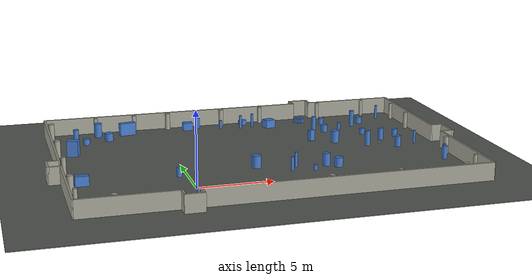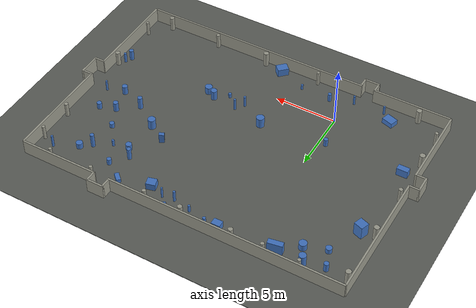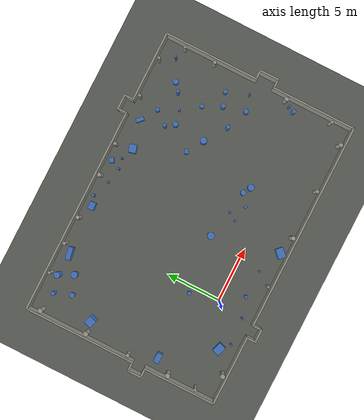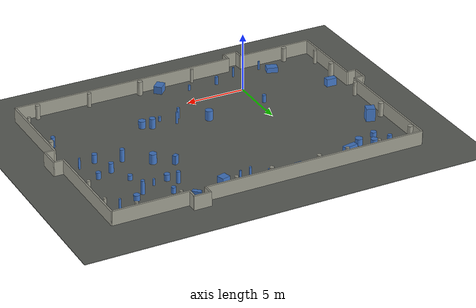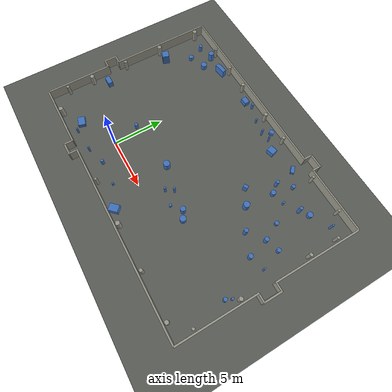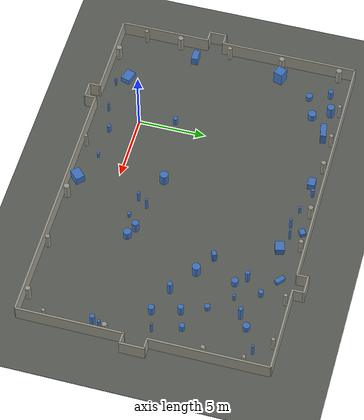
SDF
<sdf version="1.9">
 <world name="default">
  <model name="track_feature">
   <static>true</static>
   <link name="feature_link">
    <collision name="feat_box_5_collision">
     <pose>-2.174799 13.437083 0.448464 0.000000 0.000000 0.172310</pose>
     <geometry><box><size>1.150190 0.421792 0.896928</size></box></geometry>
    </collision>
    <visual name="feat_box_5_visual">
     <pose>-2.174799 13.437083 0.448464 0.000000 0.000000 0.172310</pose>
     <geometry><box><size>1.150190 0.421792 0.896928</size></box></geometry>
     <material><ambient>0.25 0.45 0.75 1</ambient><diffuse>0.25 0.45 0.75 1</diffuse></material>
    </visual>
    <collision name="feat_box_6_collision">
     <pose>-6.569533 9.118190 0.548116 0.000000 0.000000 -0.333008</pose>
     <geometry><box><size>0.749614 0.699634 1.096233</size></box></geometry>
    </collision>
    <visual name="feat_box_6_visual">
     <pose>-6.569533 9.118190 0.548116 0.000000 0.000000 -0.333008</pose>
     <geometry><box><size>0.749614 0.699634 1.096233</size></box></geometry>
     <material><ambient>0.25 0.45 0.75 1</ambient><diffuse>0.25 0.45 0.75 1</diffuse></material>
    </visual>
    <collision name="feat_box_7_collision">
     <pose>10.310160 8.431159 0.380792 0.000000 0.000000 2.068388</pose>
     <geometry><box><size>0.315067 0.410631 0.761584</size></box></geometry>
    </collision>
    <visual name="feat_box_7_visual">
     <pose>10.310160 8.431159 0.380792 0.000000 0.000000 2.068388</pose>
     <geometry><box><size>0.315067 0.410631 0.761584</size></box></geometry>
     <material><ambient>0.25 0.45 0.75 1</ambient><diffuse>0.25 0.45 0.75 1</diffuse></material>
    </visual>
    <collision name="feat_box_9_collision">
     <pose>10.962512 13.339833 0.157273 0.000000 0.000000 0.816995</pose>
     <geometry><box><size>0.345128 0.717801 0.314546</size></box></geometry>
    </collision>
    <visual name="feat_box_9_visual">
     <pose>10.962512 13.339833 0.157273 0.000000 0.000000 0.816995</pose>
     <geometry><box><size>0.345128 0.717801 0.314546</size></box></geometry>
     <material><ambient>0.25 0.45 0.75 1</ambient><diffuse>0.25 0.45 0.75 1</diffuse></material>
    </visual>
    <collision name="feat_box_10_collision">
     <pose>8.403281 12.710792 0.289428 0.000000 0.000000 -1.310550</pose>
     <geometry><box><size>0.654921 0.731768 0.578856</size></box></geometry>
    </collision>
    <visual name="feat_box_10_visual">
     <pose>8.403281 12.710792 0.289428 0.000000 0.000000 -1.310550</pose>
     <geometry><box><size>0.654921 0.731768 0.578856</size></box></geometry>
     <material><ambient>0.25 0.45 0.75 1</ambient><diffuse>0.25 0.45 0.75 1</diffuse></material>
    </visual>
    <collision name="feat_box_20_collision">
     <pose>-3.734603 -1.923020 0.218863 0.000000 0.000000 2.840322</pose>
     <geometry><box><size>0.931133 0.693589 0.437726</size></box></geometry>
    </collision>
    <visual name="feat_box_20_visual">
     <pose>-3.734603 -1.923020 0.218863 0.000000 0.000000 2.840322</pose>
     <geometry><box><size>0.931133 0.693589 0.437726</size></box></geometry>
     <material><ambient>0.25 0.45 0.75 1</ambient><diffuse>0.25 0.45 0.75 1</diffuse></material>
    </visual>
    <collision name="feat_box_21_collision">
     <pose>2.355821 13.623546 0.272021 0.000000 0.000000 1.598540</pose>
     <geometry><box><size>0.541540 0.700797 0.544043</size></box></geometry>
    </collision>
    <visual name="feat_box_21_visual">
     <pose>2.355821 13.623546 0.272021 0.000000 0.000000 1.598540</pose>
     <geometry><box><size>0.541540 0.700797 0.544043</size></box></geometry>
     <material><ambient>0.25 0.45 0.75 1</ambient><diffuse>0.25 0.45 0.75 1</diffuse></material>
    </visual>
    <collision name="feat_box_26_collision">
     <pose>6.139113 -2.872765 0.319586 0.000000 0.000000 0.792740</pose>
     <geometry><box><size>0.904940 0.691659 0.639172</size></box></geometry>
    </collision>
    <visual name="feat_box_26_visual">
     <pose>6.139113 -2.872765 0.319586 0.000000 0.000000 0.792740</pose>
     <geometry><box><size>0.904940 0.691659 0.639172</size></box></geometry>
     <material><ambient>0.25 0.45 0.75 1</ambient><diffuse>0.25 0.45 0.75 1</diffuse></material>
    </visual>
    <collision name="feat_box_31_collision">
     <pose>-6.799827 2.495728 0.328114 0.000000 0.000000 1.572940</pose>
     <geometry><box><size>0.486991 0.883632 0.656227</size></box></geometry>
    </collision>
    <visual name="feat_box_31_visual">
     <pose>-6.799827 2.495728 0.328114 0.000000 0.000000 1.572940</pose>
     <geometry><box><size>0.486991 0.883632 0.656227</size></box></geometry>
     <material><ambient>0.25 0.45 0.75 1</ambient><diffuse>0.25 0.45 0.75 1</diffuse></material>
    </visual>
    <collision name="feat_box_44_collision">
     <pose>6.667799 13.940735 0.173201 0.000000 0.000000 -2.572693</pose>
     <geometry><box><size>0.458432 0.416363 0.346402</size></box></geometry>
    </collision>
    <visual name="feat_box_44_visual">
     <pose>6.667799 13.940735 0.173201 0.000000 0.000000 -2.572693</pose>
     <geometry><box><size>0.458432 0.416363 0.346402</size></box></geometry>
     <material><ambient>0.25 0.45 0.75 1</ambient><diffuse>0.25 0.45 0.75 1</diffuse></material>
    </visual>
    <collision name="feat_cyl_1_collision">
     <pose>1.403269 -1.914486 0.340358 0.000000 0.000000 0.000000</pose>
     <geometry><cylinder><radius>0.145363</radius><length>0.680715</length></cylinder></geometry>
    </collision>
    <visual name="feat_cyl_1_visual">
     <pose>1.403269 -1.914486 0.340358 0.000000 0.000000 0.000000</pose>
     <geometry><cylinder><radius>0.145363</radius><length>0.680715</length></cylinder></geometry>
     <material><ambient>0.25 0.45 0.75 1</ambient><diffuse>0.25 0.45 0.75 1</diffuse></material>
    </visual>
    <collision name="feat_cyl_2_collision">
     <pose>16.485374 7.789993 0.274178 0.000000 0.000000 0.000000</pose>
     <geometry><cylinder><radius>0.194425</radius><length>0.548357</length></cylinder></geometry>
    </collision>
    <visual name="feat_cyl_2_visual">
     <pose>16.485374 7.789993 0.274178 0.000000 0.000000 0.000000</pose>
     <geometry><cylinder><radius>0.194425</radius><length>0.548357</length></cylinder></geometry>
     <material><ambient>0.25 0.45 0.75 1</ambient><diffuse>0.25 0.45 0.75 1</diffuse></material>
    </visual>
    <collision name="feat_cyl_3_collision">
     <pose>-4.304456 13.519091 0.484793 0.000000 0.000000 0.000000</pose>
     <geometry><cylinder><radius>0.276709</radius><length>0.969587</length></cylinder></geometry>
    </collision>
    <visual name="feat_cyl_3_visual">
     <pose>-4.304456 13.519091 0.484793 0.000000 0.000000 0.000000</pose>
     <geometry><cylinder><radius>0.276709</radius><length>0.969587</length></cylinder></geometry>
     <material><ambient>0.25 0.45 0.75 1</ambient><diffuse>0.25 0.45 0.75 1</diffuse></material>
    </visual>
    <collision name="feat_cyl_4_collision">
     <pose>17.807359 2.253464 0.427318 0.000000 0.000000 0.000000</pose>
     <geometry><cylinder><radius>0.111590</radius><length>0.854636</length></cylinder></geometry>
    </collision>
    <visual name="feat_cyl_4_visual">
     <pose>17.807359 2.253464 0.427318 0.000000 0.000000 0.000000</pose>
     <geometry><cylinder><radius>0.111590</radius><length>0.854636</length></cylinder></geometry>
     <material><ambient>0.25 0.45 0.75 1</ambient><diffuse>0.25 0.45 0.75 1</diffuse></material>
    </visual>
    <collision name="feat_cyl_8_collision">
     <pose>6.834041 1.928274 0.459564 0.000000 0.000000 0.000000</pose>
     <geometry><cylinder><radius>0.106569</radius><length>0.919128</length></cylinder></geometry>
    </collision>
    <visual name="feat_cyl_8_visual">
     <pose>6.834041 1.928274 0.459564 0.000000 0.000000 0.000000</pose>
     <geometry><cylinder><radius>0.106569</radius><length>0.919128</length></cylinder></geometry>
     <material><ambient>0.25 0.45 0.75 1</ambient><diffuse>0.25 0.45 0.75 1</diffuse></material>
    </visual>
    <collision name="feat_cyl_11_collision">
     <pose>-2.924593 -2.657007 0.374404 0.000000 0.000000 0.000000</pose>
     <geometry><cylinder><radius>0.085984</radius><length>0.748809</length></cylinder></geometry>
    </collision>
    <visual name="feat_cyl_11_visual">
     <pose>-2.924593 -2.657007 0.374404 0.000000 0.000000 0.000000</pose>
     <geometry><cylinder><radius>0.085984</radius><length>0.748809</length></cylinder></geometry>
     <material><ambient>0.25 0.45 0.75 1</ambient><diffuse>0.25 0.45 0.75 1</diffuse></material>
    </visual>
    <collision name="feat_cyl_12_collision">
     <pose>17.567096 1.713621 0.446315 0.000000 0.000000 0.000000</pose>
     <geometry><cylinder><radius>0.180054</radius><length>0.892630</length></cylinder></geometry>
    </collision>
    <visual name="feat_cyl_12_visual">
     <pose>17.567096 1.713621 0.446315 0.000000 0.000000 0.000000</pose>
     <geometry><cylinder><radius>0.180054</radius><length>0.892630</length></cylinder></geometry>
     <material><ambient>0.25 0.45 0.75 1</ambient><diffuse>0.25 0.45 0.75 1</diffuse></material>
    </visual>
    <collision name="feat_cyl_13_collision">
     <pose>-0.559488 2.623379 0.318713 0.000000 0.000000 0.000000</pose>
     <geometry><cylinder><radius>0.167321</radius><length>0.637426</length></cylinder></geometry>
    </collision>
    <visual name="feat_cyl_13_visual">
     <pose>-0.559488 2.623379 0.318713 0.000000 0.000000 0.000000</pose>
     <geometry><cylinder><radius>0.167321</radius><length>0.637426</length></cylinder></geometry>
     <material><ambient>0.25 0.45 0.75 1</ambient><diffuse>0.25 0.45 0.75 1</diffuse></material>
    </visual>
    <collision name="feat_cyl_14_collision">
     <pose>17.098362 12.929448 0.516872 0.000000 0.000000 0.000000</pose>
     <geometry><cylinder><radius>0.094552</radius><length>1.033744</length></cylinder></geometry>
    </collision>
    <visual name="feat_cyl_14_visual">
     <pose>17.098362 12.929448 0.516872 0.000000 0.000000 0.000000</pose>
     <geometry><cylinder><radius>0.094552</radius><length>1.033744</length></cylinder></geometry>
     <material><ambient>0.25 0.45 0.75 1</ambient><diffuse>0.25 0.45 0.75 1</diffuse></material>
    </visual>
    <collision name="feat_cyl_15_collision">
     <pose>3.233696 13.898324 0.391016 0.000000 0.000000 0.000000</pose>
     <geometry><cylinder><radius>0.125286</radius><length>0.782031</length></cylinder></geometry>
    </collision>
    <visual name="feat_cyl_15_visual">
     <pose>3.233696 13.898324 0.391016 0.000000 0.000000 0.000000</pose>
     <geometry><cylinder><radius>0.125286</radius><length>0.782031</length></cylinder></geometry>
     <material><ambient>0.25 0.45 0.75 1</ambient><diffuse>0.25 0.45 0.75 1</diffuse></material>
    </visual>
    <collision name="feat_cyl_16_collision">
     <pose>11.420468 11.130407 0.487877 0.000000 0.000000 0.000000</pose>
     <geometry><cylinder><radius>0.164424</radius><length>0.975754</length></cylinder></geometry>
    </collision>
    <visual name="feat_cyl_16_visual">
     <pose>11.420468 11.130407 0.487877 0.000000 0.000000 0.000000</pose>
     <geometry><cylinder><radius>0.164424</radius><length>0.975754</length></cylinder></geometry>
     <material><ambient>0.25 0.45 0.75 1</ambient><diffuse>0.25 0.45 0.75 1</diffuse></material>
    </visual>
    <collision name="feat_cyl_17_collision">
     <pose>7.217926 13.164339 0.489561 0.000000 0.000000 0.000000</pose>
     <geometry><cylinder><radius>0.082447</radius><length>0.979122</length></cylinder></geometry>
    </collision>
    <visual name="feat_cyl_17_visual">
     <pose>7.217926 13.164339 0.489561 0.000000 0.000000 0.000000</pose>
     <geometry><cylinder><radius>0.082447</radius><length>0.979122</length></cylinder></geometry>
     <material><ambient>0.25 0.45 0.75 1</ambient><diffuse>0.25 0.45 0.75 1</diffuse></material>
    </visual>
    <collision name="feat_cyl_18_collision">
     <pose>12.405849 12.337244 0.253028 0.000000 0.000000 0.000000</pose>
     <geometry><cylinder><radius>0.179297</radius><length>0.506056</length></cylinder></geometry>
    </collision>
    <visual name="feat_cyl_18_visual">
     <pose>12.405849 12.337244 0.253028 0.000000 0.000000 0.000000</pose>
     <geometry><cylinder><radius>0.179297</radius><length>0.506056</length></cylinder></geometry>
     <material><ambient>0.25 0.45 0.75 1</ambient><diffuse>0.25 0.45 0.75 1</diffuse></material>
    </visual>
    <collision name="feat_cyl_19_collision">
     <pose>15.306951 12.035152 0.235700 0.000000 0.000000 0.000000</pose>
     <geometry><cylinder><radius>0.257866</radius><length>0.471400</length></cylinder></geometry>
    </collision>
    <visual name="feat_cyl_19_visual">
     <pose>15.306951 12.035152 0.235700 0.000000 0.000000 0.000000</pose>
     <geometry><cylinder><radius>0.257866</radius><length>0.471400</length></cylinder></geometry>
     <material><ambient>0.25 0.45 0.75 1</ambient><diffuse>0.25 0.45 0.75 1</diffuse></material>
    </visual>
    <collision name="feat_cyl_22_collision">
     <pose>15.224515 7.358458 0.406526 0.000000 0.000000 0.000000</pose>
     <geometry><cylinder><radius>0.204325</radius><length>0.813052</length></cylinder></geometry>
    </collision>
    <visual name="feat_cyl_22_visual">
     <pose>15.224515 7.358458 0.406526 0.000000 0.000000 0.000000</pose>
     <geometry><cylinder><radius>0.204325</radius><length>0.813052</length></cylinder></geometry>
     <material><ambient>0.25 0.45 0.75 1</ambient><diffuse>0.25 0.45 0.75 1</diffuse></material>
    </visual>
    <collision name="feat_cyl_23_collision">
     <pose>4.831986 13.328597 0.294774 0.000000 0.000000 0.000000</pose>
     <geometry><cylinder><radius>0.096906</radius><length>0.589548</length></cylinder></geometry>
    </collision>
    <visual name="feat_cyl_23_visual">
     <pose>4.831986 13.328597 0.294774 0.000000 0.000000 0.000000</pose>
     <geometry><cylinder><radius>0.096906</radius><length>0.589548</length></cylinder></geometry>
     <material><ambient>0.25 0.45 0.75 1</ambient><diffuse>0.25 0.45 0.75 1</diffuse></material>
    </visual>
    <collision name="feat_cyl_24_collision">
     <pose>6.275229 13.003795 0.473795 0.000000 0.000000 0.000000</pose>
     <geometry><cylinder><radius>0.104284</radius><length>0.947589</length></cylinder></geometry>
    </collision>
    <visual name="feat_cyl_24_visual">
     <pose>6.275229 13.003795 0.473795 0.000000 0.000000 0.000000</pose>
     <geometry><cylinder><radius>0.104284</radius><length>0.947589</length></cylinder></geometry>
     <material><ambient>0.25 0.45 0.75 1</ambient><diffuse>0.25 0.45 0.75 1</diffuse></material>
    </visual>
    <collision name="feat_cyl_25_collision">
     <pose>17.161952 5.797806 0.460913 0.000000 0.000000 0.000000</pose>
     <geometry><cylinder><radius>0.085311</radius><length>0.921826</length></cylinder></geometry>
    </collision>
    <visual name="feat_cyl_25_visual">
     <pose>17.161952 5.797806 0.460913 0.000000 0.000000 0.000000</pose>
     <geometry><cylinder><radius>0.085311</radius><length>0.921826</length></cylinder></geometry>
     <material><ambient>0.25 0.45 0.75 1</ambient><diffuse>0.25 0.45 0.75 1</diffuse></material>
    </visual>
    <collision name="feat_cyl_27_collision">
     <pose>13.750012 6.175120 0.523348 0.000000 0.000000 0.000000</pose>
     <geometry><cylinder><radius>0.188889</radius><length>1.046695</length></cylinder></geometry>
    </collision>
    <visual name="feat_cyl_27_visual">
     <pose>13.750012 6.175120 0.523348 0.000000 0.000000 0.000000</pose>
     <geometry><cylinder><radius>0.188889</radius><length>1.046695</length></cylinder></geometry>
     <material><ambient>0.25 0.45 0.75 1</ambient><diffuse>0.25 0.45 0.75 1</diffuse></material>
    </visual>
    <collision name="feat_cyl_28_collision">
     <pose>14.516354 11.420682 0.576689 0.000000 0.000000 0.000000</pose>
     <geometry><cylinder><radius>0.160424</radius><length>1.153377</length></cylinder></geometry>
    </collision>
    <visual name="feat_cyl_28_visual">
     <pose>14.516354 11.420682 0.576689 0.000000 0.000000 0.000000</pose>
     <geometry><cylinder><radius>0.160424</radius><length>1.153377</length></cylinder></geometry>
     <material><ambient>0.25 0.45 0.75 1</ambient><diffuse>0.25 0.45 0.75 1</diffuse></material>
    </visual>
    <collision name="feat_cyl_29_collision">
     <pose>8.341802 1.655055 0.179181 0.000000 0.000000 0.000000</pose>
     <geometry><cylinder><radius>0.127084</radius><length>0.358362</length></cylinder></geometry>
    </collision>
    <visual name="feat_cyl_29_visual">
     <pose>8.341802 1.655055 0.179181 0.000000 0.000000 0.000000</pose>
     <geometry><cylinder><radius>0.127084</radius><length>0.358362</length></cylinder></geometry>
     <material><ambient>0.25 0.45 0.75 1</ambient><diffuse>0.25 0.45 0.75 1</diffuse></material>
    </visual>
    <collision name="feat_cyl_30_collision">
     <pose>-5.378656 11.646509 0.209703 0.000000 0.000000 0.000000</pose>
     <geometry><cylinder><radius>0.240190</radius><length>0.419406</length></cylinder></geometry>
    </collision>
    <visual name="feat_cyl_30_visual">
     <pose>-5.378656 11.646509 0.209703 0.000000 0.000000 0.000000</pose>
     <geometry><cylinder><radius>0.240190</radius><length>0.419406</length></cylinder></geometry>
     <material><ambient>0.25 0.45 0.75 1</ambient><diffuse>0.25 0.45 0.75 1</diffuse></material>
    </visual>
    <collision name="feat_cyl_32_collision">
     <pose>15.723732 5.393128 0.368239 0.000000 0.000000 0.000000</pose>
     <geometry><cylinder><radius>0.218307</radius><length>0.736477</length></cylinder></geometry>
    </collision>
    <visual name="feat_cyl_32_visual">
     <pose>15.723732 5.393128 0.368239 0.000000 0.000000 0.000000</pose>
     <geometry><cylinder><radius>0.218307</radius><length>0.736477</length></cylinder></geometry>
     <material><ambient>0.25 0.45 0.75 1</ambient><diffuse>0.25 0.45 0.75 1</diffuse></material>
    </visual>
    <collision name="feat_cyl_33_collision">
     <pose>13.220808 10.629878 0.267575 0.000000 0.000000 0.000000</pose>
     <geometry><cylinder><radius>0.102332</radius><length>0.535150</length></cylinder></geometry>
    </collision>
    <visual name="feat_cyl_33_visual">
     <pose>13.220808 10.629878 0.267575 0.000000 0.000000 0.000000</pose>
     <geometry><cylinder><radius>0.102332</radius><length>0.535150</length></cylinder></geometry>
     <material><ambient>0.25 0.45 0.75 1</ambient><diffuse>0.25 0.45 0.75 1</diffuse></material>
    </visual>
    <collision name="feat_cyl_34_collision">
     <pose>-0.447356 -2.487376 0.417489 0.000000 0.000000 0.000000</pose>
     <geometry><cylinder><radius>0.082836</radius><length>0.834978</length></cylinder></geometry>
    </collision>
    <visual name="feat_cyl_34_visual">
     <pose>-0.447356 -2.487376 0.417489 0.000000 0.000000 0.000000</pose>
     <geometry><cylinder><radius>0.082836</radius><length>0.834978</length></cylinder></geometry>
     <material><ambient>0.25 0.45 0.75 1</ambient><diffuse>0.25 0.45 0.75 1</diffuse></material>
    </visual>
    <collision name="feat_cyl_35_collision">
     <pose>11.986330 10.375096 0.263449 0.000000 0.000000 0.000000</pose>
     <geometry><cylinder><radius>0.241581</radius><length>0.526898</length></cylinder></geometry>
    </collision>
    <visual name="feat_cyl_35_visual">
     <pose>11.986330 10.375096 0.263449 0.000000 0.000000 0.000000</pose>
     <geometry><cylinder><radius>0.241581</radius><length>0.526898</length></cylinder></geometry>
     <material><ambient>0.25 0.45 0.75 1</ambient><diffuse>0.25 0.45 0.75 1</diffuse></material>
    </visual>
    <collision name="feat_cyl_36_collision">
     <pose>10.052515 2.011128 0.308097 0.000000 0.000000 0.000000</pose>
     <geometry><cylinder><radius>0.293568</radius><length>0.616194</length></cylinder></geometry>
    </collision>
    <visual name="feat_cyl_36_visual">
     <pose>10.052515 2.011128 0.308097 0.000000 0.000000 0.000000</pose>
     <geometry><cylinder><radius>0.293568</radius><length>0.616194</length></cylinder></geometry>
     <material><ambient>0.25 0.45 0.75 1</ambient><diffuse>0.25 0.45 0.75 1</diffuse></material>
    </visual>
    <collision name="feat_cyl_37_collision">
     <pose>3.870301 -1.993012 0.224134 0.000000 0.000000 0.000000</pose>
     <geometry><cylinder><radius>0.097403</radius><length>0.448268</length></cylinder></geometry>
    </collision>
    <visual name="feat_cyl_37_visual">
     <pose>3.870301 -1.993012 0.224134 0.000000 0.000000 0.000000</pose>
     <geometry><cylinder><radius>0.097403</radius><length>0.448268</length></cylinder></geometry>
     <material><ambient>0.25 0.45 0.75 1</ambient><diffuse>0.25 0.45 0.75 1</diffuse></material>
    </visual>
    <collision name="feat_cyl_38_collision">
     <pose>14.446587 9.037181 0.205442 0.000000 0.000000 0.000000</pose>
     <geometry><cylinder><radius>0.193631</radius><length>0.410884</length></cylinder></geometry>
    </collision>
    <visual name="feat_cyl_38_visual">
     <pose>14.446587 9.037181 0.205442 0.000000 0.000000 0.000000</pose>
     <geometry><cylinder><radius>0.193631</radius><length>0.410884</length></cylinder></geometry>
     <material><ambient>0.25 0.45 0.75 1</ambient><diffuse>0.25 0.45 0.75 1</diffuse></material>
    </visual>
    <collision name="feat_cyl_39_collision">
     <pose>9.342683 2.409727 0.423028 0.000000 0.000000 0.000000</pose>
     <geometry><cylinder><radius>0.247670</radius><length>0.846057</length></cylinder></geometry>
    </collision>
    <visual name="feat_cyl_39_visual">
     <pose>9.342683 2.409727 0.423028 0.000000 0.000000 0.000000</pose>
     <geometry><cylinder><radius>0.247670</radius><length>0.846057</length></cylinder></geometry>
     <material><ambient>0.25 0.45 0.75 1</ambient><diffuse>0.25 0.45 0.75 1</diffuse></material>
    </visual>
    <collision name="feat_cyl_40_collision">
     <pose>-5.934520 13.151216 0.358928 0.000000 0.000000 0.000000</pose>
     <geometry><cylinder><radius>0.187035</radius><length>0.717857</length></cylinder></geometry>
    </collision>
    <visual name="feat_cyl_40_visual">
     <pose>-5.934520 13.151216 0.358928 0.000000 0.000000 0.000000</pose>
     <geometry><cylinder><radius>0.187035</radius><length>0.717857</length></cylinder></geometry>
     <material><ambient>0.25 0.45 0.75 1</ambient><diffuse>0.25 0.45 0.75 1</diffuse></material>
    </visual>
    <collision name="feat_cyl_41_collision">
     <pose>11.785597 7.534431 0.424606 0.000000 0.000000 0.000000</pose>
     <geometry><cylinder><radius>0.299212</radius><length>0.849211</length></cylinder></geometry>
    </collision>
    <visual name="feat_cyl_41_visual">
     <pose>11.785597 7.534431 0.424606 0.000000 0.000000 0.000000</pose>
     <geometry><cylinder><radius>0.299212</radius><length>0.849211</length></cylinder></geometry>
     <material><ambient>0.25 0.45 0.75 1</ambient><diffuse>0.25 0.45 0.75 1</diffuse></material>
    </visual>
    <collision name="feat_cyl_42_collision">
     <pose>-3.688495 12.256978 0.279445 0.000000 0.000000 0.000000</pose>
     <geometry><cylinder><radius>0.304890</radius><length>0.558890</length></cylinder></geometry>
    </collision>
    <visual name="feat_cyl_42_visual">
     <pose>-3.688495 12.256978 0.279445 0.000000 0.000000 0.000000</pose>
     <geometry><cylinder><radius>0.304890</radius><length>0.558890</length></cylinder></geometry>
     <material><ambient>0.25 0.45 0.75 1</ambient><diffuse>0.25 0.45 0.75 1</diffuse></material>
    </visual>
    <collision name="feat_cyl_43_collision">
     <pose>7.312124 2.645900 0.501117 0.000000 0.000000 0.000000</pose>
     <geometry><cylinder><radius>0.098705</radius><length>1.002233</length></cylinder></geometry>
    </collision>
    <visual name="feat_cyl_43_visual">
     <pose>7.312124 2.645900 0.501117 0.000000 0.000000 0.000000</pose>
     <geometry><cylinder><radius>0.098705</radius><length>1.002233</length></cylinder></geometry>
     <material><ambient>0.25 0.45 0.75 1</ambient><diffuse>0.25 0.45 0.75 1</diffuse></material>
    </visual>
    <collision name="feat_cyl_45_collision">
     <pose>4.739498 3.223282 0.416398 0.000000 0.000000 0.000000</pose>
     <geometry><cylinder><radius>0.317574</radius><length>0.832797</length></cylinder></geometry>
    </collision>
    <visual name="feat_cyl_45_visual">
     <pose>4.739498 3.223282 0.416398 0.000000 0.000000 0.000000</pose>
     <geometry><cylinder><radius>0.317574</radius><length>0.832797</length></cylinder></geometry>
     <material><ambient>0.25 0.45 0.75 1</ambient><diffuse>0.25 0.45 0.75 1</diffuse></material>
    </visual>
   </link>
  </model>
  <model name="track_ground">
   <static>true</static>
   <link name="ground_link">
    <collision name="ground_collision">
     <pose>4.060853 4.583100 -0.025000 0.000000 0.000000 0.000000</pose>
     <geometry><box><size>80.000000 80.000000 0.050000</size></box></geometry>
     <surface>
      <friction><ode><mu>1.2</mu><mu2>1.2</mu2></ode></friction>
      <contact><ode><kp>100000.0</kp><kd>10.0</kd></ode></contact>
     </surface>
    </collision>
    <visual name="ground_visual">
     <pose>4.060853 4.583100 -0.025000 0.000000 0.000000 0.000000</pose>
     <geometry><box><size>80.000000 80.000000 0.050000</size></box></geometry>
     <material><ambient>0.35 0.36 0.34 1</ambient><diffuse>0.35 0.36 0.34 1</diffuse></material>
    </visual>
   </link>
  </model>
  <model name="track_room">
   <static>true</static>
   <link name="room_link">
    <collision name="hall_0_0_collision">
     <pose>-4.786082 -3.500000 0.600000 0.000000 0.000000 0.000000</pose>
     <geometry><box><size>6.427837 0.150000 1.200000</size></box></geometry>
    </collision>
    <visual name="hall_0_0_visual">
     <pose>-4.786082 -3.500000 0.600000 0.000000 0.000000 0.000000</pose>
     <geometry><box><size>6.427837 0.150000 1.200000</size></box></geometry>
     <material><ambient>0.6 0.6 0.55 1</ambient><diffuse>0.6 0.6 0.55 1</diffuse></material>
    </visual>
    <collision name="hall_0_74_collision">
     <pose>8.967895 -3.500000 0.600000 0.000000 0.000000 0.000000</pose>
     <geometry><box><size>19.064211 0.150000 1.200000</size></box></geometry>
    </collision>
    <visual name="hall_0_74_visual">
     <pose>8.967895 -3.500000 0.600000 0.000000 0.000000 0.000000</pose>
     <geometry><box><size>19.064211 0.150000 1.200000</size></box></geometry>
     <material><ambient>0.6 0.6 0.55 1</ambient><diffuse>0.6 0.6 0.55 1</diffuse></material>
    </visual>
    <collision name="hall_niche_0_collision">
     <pose>-1.068187 -4.300000 0.600000 0.000000 0.000000 0.000000</pose>
     <geometry><box><size>1.307953 0.150000 1.200000</size></box></geometry>
    </collision>
    <visual name="hall_niche_0_visual">
     <pose>-1.068187 -4.300000 0.600000 0.000000 0.000000 0.000000</pose>
     <geometry><box><size>1.307953 0.150000 1.200000</size></box></geometry>
     <material><ambient>0.6 0.6 0.55 1</ambient><diffuse>0.6 0.6 0.55 1</diffuse></material>
    </visual>
    <collision name="hall_jamb_0_-1_collision">
     <pose>-1.647163 -3.900000 0.600000 0.000000 0.000000 0.000000</pose>
     <geometry><box><size>0.150000 0.800000 1.200000</size></box></geometry>
    </collision>
    <visual name="hall_jamb_0_-1_visual">
     <pose>-1.647163 -3.900000 0.600000 0.000000 0.000000 0.000000</pose>
     <geometry><box><size>0.150000 0.800000 1.200000</size></box></geometry>
     <material><ambient>0.6 0.6 0.55 1</ambient><diffuse>0.6 0.6 0.55 1</diffuse></material>
    </visual>
    <collision name="hall_jamb_0_1_collision">
     <pose>-0.489211 -3.900000 0.600000 0.000000 0.000000 0.000000</pose>
     <geometry><box><size>0.150000 0.800000 1.200000</size></box></geometry>
    </collision>
    <visual name="hall_jamb_0_1_visual">
     <pose>-0.489211 -3.900000 0.600000 0.000000 0.000000 0.000000</pose>
     <geometry><box><size>0.150000 0.800000 1.200000</size></box></geometry>
     <material><ambient>0.6 0.6 0.55 1</ambient><diffuse>0.6 0.6 0.55 1</diffuse></material>
    </visual>
    <collision name="hall_1_0_collision">
     <pose>18.500000 0.387119 0.600000 0.000000 0.000000 1.570796</pose>
     <geometry><box><size>7.774238 0.150000 1.200000</size></box></geometry>
    </collision>
    <visual name="hall_1_0_visual">
     <pose>18.500000 0.387119 0.600000 0.000000 0.000000 1.570796</pose>
     <geometry><box><size>7.774238 0.150000 1.200000</size></box></geometry>
     <material><ambient>0.6 0.6 0.55 1</ambient><diffuse>0.6 0.6 0.55 1</diffuse></material>
    </visual>
    <collision name="hall_1_93_collision">
     <pose>18.500000 10.160212 0.600000 0.000000 0.000000 1.570796</pose>
     <geometry><box><size>8.679576 0.150000 1.200000</size></box></geometry>
    </collision>
    <visual name="hall_1_93_visual">
     <pose>18.500000 10.160212 0.600000 0.000000 0.000000 1.570796</pose>
     <geometry><box><size>8.679576 0.150000 1.200000</size></box></geometry>
     <material><ambient>0.6 0.6 0.55 1</ambient><diffuse>0.6 0.6 0.55 1</diffuse></material>
    </visual>
    <collision name="hall_niche_1_collision">
     <pose>19.300000 5.047331 0.600000 0.000000 0.000000 1.570796</pose>
     <geometry><box><size>1.846186 0.150000 1.200000</size></box></geometry>
    </collision>
    <visual name="hall_niche_1_visual">
     <pose>19.300000 5.047331 0.600000 0.000000 0.000000 1.570796</pose>
     <geometry><box><size>1.846186 0.150000 1.200000</size></box></geometry>
     <material><ambient>0.6 0.6 0.55 1</ambient><diffuse>0.6 0.6 0.55 1</diffuse></material>
    </visual>
    <collision name="hall_jamb_1_-1_collision">
     <pose>18.900000 4.199238 0.600000 0.000000 0.000000 1.570796</pose>
     <geometry><box><size>0.150000 0.800000 1.200000</size></box></geometry>
    </collision>
    <visual name="hall_jamb_1_-1_visual">
     <pose>18.900000 4.199238 0.600000 0.000000 0.000000 1.570796</pose>
     <geometry><box><size>0.150000 0.800000 1.200000</size></box></geometry>
     <material><ambient>0.6 0.6 0.55 1</ambient><diffuse>0.6 0.6 0.55 1</diffuse></material>
    </visual>
    <collision name="hall_jamb_1_1_collision">
     <pose>18.900000 5.895424 0.600000 0.000000 0.000000 1.570796</pose>
     <geometry><box><size>0.150000 0.800000 1.200000</size></box></geometry>
    </collision>
    <visual name="hall_jamb_1_1_visual">
     <pose>18.900000 5.895424 0.600000 0.000000 0.000000 1.570796</pose>
     <geometry><box><size>0.150000 0.800000 1.200000</size></box></geometry>
     <material><ambient>0.6 0.6 0.55 1</ambient><diffuse>0.6 0.6 0.55 1</diffuse></material>
    </visual>
    <collision name="hall_2_0_collision">
     <pose>15.285006 14.500000 0.600000 0.000000 0.000000 3.141593</pose>
     <geometry><box><size>6.429988 0.150000 1.200000</size></box></geometry>
    </collision>
    <visual name="hall_2_0_visual">
     <pose>15.285006 14.500000 0.600000 0.000000 0.000000 3.141593</pose>
     <geometry><box><size>6.429988 0.150000 1.200000</size></box></geometry>
     <material><ambient>0.6 0.6 0.55 1</ambient><diffuse>0.6 0.6 0.55 1</diffuse></material>
    </visual>
    <collision name="hall_2_75_collision">
     <pose>1.459675 14.500000 0.600000 0.000000 0.000000 3.141593</pose>
     <geometry><box><size>18.919350 0.150000 1.200000</size></box></geometry>
    </collision>
    <visual name="hall_2_75_visual">
     <pose>1.459675 14.500000 0.600000 0.000000 0.000000 3.141593</pose>
     <geometry><box><size>18.919350 0.150000 1.200000</size></box></geometry>
     <material><ambient>0.6 0.6 0.55 1</ambient><diffuse>0.6 0.6 0.55 1</diffuse></material>
    </visual>
    <collision name="hall_niche_2_collision">
     <pose>11.494681 15.300000 0.600000 0.000000 0.000000 3.141593</pose>
     <geometry><box><size>1.450662 0.150000 1.200000</size></box></geometry>
    </collision>
    <visual name="hall_niche_2_visual">
     <pose>11.494681 15.300000 0.600000 0.000000 0.000000 3.141593</pose>
     <geometry><box><size>1.450662 0.150000 1.200000</size></box></geometry>
     <material><ambient>0.6 0.6 0.55 1</ambient><diffuse>0.6 0.6 0.55 1</diffuse></material>
    </visual>
    <collision name="hall_jamb_2_-1_collision">
     <pose>12.145012 14.900000 0.600000 0.000000 0.000000 3.141593</pose>
     <geometry><box><size>0.150000 0.800000 1.200000</size></box></geometry>
    </collision>
    <visual name="hall_jamb_2_-1_visual">
     <pose>12.145012 14.900000 0.600000 0.000000 0.000000 3.141593</pose>
     <geometry><box><size>0.150000 0.800000 1.200000</size></box></geometry>
     <material><ambient>0.6 0.6 0.55 1</ambient><diffuse>0.6 0.6 0.55 1</diffuse></material>
    </visual>
    <collision name="hall_jamb_2_1_collision">
     <pose>10.844350 14.900000 0.600000 0.000000 0.000000 3.141593</pose>
     <geometry><box><size>0.150000 0.800000 1.200000</size></box></geometry>
    </collision>
    <visual name="hall_jamb_2_1_visual">
     <pose>10.844350 14.900000 0.600000 0.000000 0.000000 3.141593</pose>
     <geometry><box><size>0.150000 0.800000 1.200000</size></box></geometry>
     <material><ambient>0.6 0.6 0.55 1</ambient><diffuse>0.6 0.6 0.55 1</diffuse></material>
    </visual>
    <collision name="hall_3_0_collision">
     <pose>-8.000000 9.374160 0.600000 0.000000 0.000000 -1.570796</pose>
     <geometry><box><size>10.251679 0.150000 1.200000</size></box></geometry>
    </collision>
    <visual name="hall_3_0_visual">
     <pose>-8.000000 9.374160 0.600000 0.000000 0.000000 -1.570796</pose>
     <geometry><box><size>10.251679 0.150000 1.200000</size></box></geometry>
     <material><ambient>0.6 0.6 0.55 1</ambient><diffuse>0.6 0.6 0.55 1</diffuse></material>
    </visual>
    <collision name="hall_3_113_collision">
     <pose>-8.000000 -0.165046 0.600000 0.000000 0.000000 -1.570796</pose>
     <geometry><box><size>6.669908 0.150000 1.200000</size></box></geometry>
    </collision>
    <visual name="hall_3_113_visual">
     <pose>-8.000000 -0.165046 0.600000 0.000000 0.000000 -1.570796</pose>
     <geometry><box><size>6.669908 0.150000 1.200000</size></box></geometry>
     <material><ambient>0.6 0.6 0.55 1</ambient><diffuse>0.6 0.6 0.55 1</diffuse></material>
    </visual>
    <collision name="hall_niche_3_collision">
     <pose>-8.800000 3.709114 0.600000 0.000000 0.000000 -1.570796</pose>
     <geometry><box><size>1.378413 0.150000 1.200000</size></box></geometry>
    </collision>
    <visual name="hall_niche_3_visual">
     <pose>-8.800000 3.709114 0.600000 0.000000 0.000000 -1.570796</pose>
     <geometry><box><size>1.378413 0.150000 1.200000</size></box></geometry>
     <material><ambient>0.6 0.6 0.55 1</ambient><diffuse>0.6 0.6 0.55 1</diffuse></material>
    </visual>
    <collision name="hall_jamb_3_-1_collision">
     <pose>-8.400000 4.323321 0.600000 0.000000 0.000000 -1.570796</pose>
     <geometry><box><size>0.150000 0.800000 1.200000</size></box></geometry>
    </collision>
    <visual name="hall_jamb_3_-1_visual">
     <pose>-8.400000 4.323321 0.600000 0.000000 0.000000 -1.570796</pose>
     <geometry><box><size>0.150000 0.800000 1.200000</size></box></geometry>
     <material><ambient>0.6 0.6 0.55 1</ambient><diffuse>0.6 0.6 0.55 1</diffuse></material>
    </visual>
    <collision name="hall_jamb_3_1_collision">
     <pose>-8.400000 3.094908 0.600000 0.000000 0.000000 -1.570796</pose>
     <geometry><box><size>0.150000 0.800000 1.200000</size></box></geometry>
    </collision>
    <visual name="hall_jamb_3_1_visual">
     <pose>-8.400000 3.094908 0.600000 0.000000 0.000000 -1.570796</pose>
     <geometry><box><size>0.150000 0.800000 1.200000</size></box></geometry>
     <material><ambient>0.6 0.6 0.55 1</ambient><diffuse>0.6 0.6 0.55 1</diffuse></material>
    </visual>
    <collision name="column_0_24_collision">
     <pose>-5.558212 -3.150000 0.600000 0.000000 0.000000 0.000000</pose>
     <geometry><cylinder><radius>0.213294</radius><length>1.200000</length></cylinder></geometry>
    </collision>
    <visual name="column_0_24_visual">
     <pose>-5.558212 -3.150000 0.600000 0.000000 0.000000 0.000000</pose>
     <geometry><cylinder><radius>0.213294</radius><length>1.200000</length></cylinder></geometry>
     <material><ambient>0.6 0.6 0.55 1</ambient><diffuse>0.6 0.6 0.55 1</diffuse></material>
    </visual>
    <collision name="column_0_110_collision">
     <pose>3.060764 -3.150000 0.600000 0.000000 0.000000 0.000000</pose>
     <geometry><cylinder><radius>0.124977</radius><length>1.200000</length></cylinder></geometry>
    </collision>
    <visual name="column_0_110_visual">
     <pose>3.060764 -3.150000 0.600000 0.000000 0.000000 0.000000</pose>
     <geometry><cylinder><radius>0.124977</radius><length>1.200000</length></cylinder></geometry>
     <material><ambient>0.6 0.6 0.55 1</ambient><diffuse>0.6 0.6 0.55 1</diffuse></material>
    </visual>
    <collision name="column_0_157_collision">
     <pose>7.762871 -3.150000 0.600000 0.000000 0.000000 0.000000</pose>
     <geometry><cylinder><radius>0.213359</radius><length>1.200000</length></cylinder></geometry>
    </collision>
    <visual name="column_0_157_visual">
     <pose>7.762871 -3.150000 0.600000 0.000000 0.000000 0.000000</pose>
     <geometry><cylinder><radius>0.213359</radius><length>1.200000</length></cylinder></geometry>
     <material><ambient>0.6 0.6 0.55 1</ambient><diffuse>0.6 0.6 0.55 1</diffuse></material>
    </visual>
    <collision name="column_0_202_collision">
     <pose>12.268835 -3.150000 0.600000 0.000000 0.000000 0.000000</pose>
     <geometry><cylinder><radius>0.162726</radius><length>1.200000</length></cylinder></geometry>
    </collision>
    <visual name="column_0_202_visual">
     <pose>12.268835 -3.150000 0.600000 0.000000 0.000000 0.000000</pose>
     <geometry><cylinder><radius>0.162726</radius><length>1.200000</length></cylinder></geometry>
     <material><ambient>0.6 0.6 0.55 1</ambient><diffuse>0.6 0.6 0.55 1</diffuse></material>
    </visual>
    <collision name="column_0_247_collision">
     <pose>16.737867 -3.150000 0.600000 0.000000 0.000000 0.000000</pose>
     <geometry><cylinder><radius>0.185654</radius><length>1.200000</length></cylinder></geometry>
    </collision>
    <visual name="column_0_247_visual">
     <pose>16.737867 -3.150000 0.600000 0.000000 0.000000 0.000000</pose>
     <geometry><cylinder><radius>0.185654</radius><length>1.200000</length></cylinder></geometry>
     <material><ambient>0.6 0.6 0.55 1</ambient><diffuse>0.6 0.6 0.55 1</diffuse></material>
    </visual>
    <collision name="column_1_19_collision">
     <pose>18.150000 -1.584682 0.600000 0.000000 0.000000 0.000000</pose>
     <geometry><cylinder><radius>0.128619</radius><length>1.200000</length></cylinder></geometry>
    </collision>
    <visual name="column_1_19_visual">
     <pose>18.150000 -1.584682 0.600000 0.000000 0.000000 0.000000</pose>
     <geometry><cylinder><radius>0.128619</radius><length>1.200000</length></cylinder></geometry>
     <material><ambient>0.6 0.6 0.55 1</ambient><diffuse>0.6 0.6 0.55 1</diffuse></material>
    </visual>
    <collision name="column_1_62_collision">
     <pose>18.150000 2.771372 0.600000 0.000000 0.000000 0.000000</pose>
     <geometry><cylinder><radius>0.186629</radius><length>1.200000</length></cylinder></geometry>
    </collision>
    <visual name="column_1_62_visual">
     <pose>18.150000 2.771372 0.600000 0.000000 0.000000 0.000000</pose>
     <geometry><cylinder><radius>0.186629</radius><length>1.200000</length></cylinder></geometry>
     <material><ambient>0.6 0.6 0.55 1</ambient><diffuse>0.6 0.6 0.55 1</diffuse></material>
    </visual>
    <collision name="column_1_132_collision">
     <pose>18.150000 9.702089 0.600000 0.000000 0.000000 0.000000</pose>
     <geometry><cylinder><radius>0.154306</radius><length>1.200000</length></cylinder></geometry>
    </collision>
    <visual name="column_1_132_visual">
     <pose>18.150000 9.702089 0.600000 0.000000 0.000000 0.000000</pose>
     <geometry><cylinder><radius>0.154306</radius><length>1.200000</length></cylinder></geometry>
     <material><ambient>0.6 0.6 0.55 1</ambient><diffuse>0.6 0.6 0.55 1</diffuse></material>
    </visual>
    <collision name="column_1_160_collision">
     <pose>18.150000 12.558483 0.600000 0.000000 0.000000 0.000000</pose>
     <geometry><cylinder><radius>0.127942</radius><length>1.200000</length></cylinder></geometry>
    </collision>
    <visual name="column_1_160_visual">
     <pose>18.150000 12.558483 0.600000 0.000000 0.000000 0.000000</pose>
     <geometry><cylinder><radius>0.127942</radius><length>1.200000</length></cylinder></geometry>
     <material><ambient>0.6 0.6 0.55 1</ambient><diffuse>0.6 0.6 0.55 1</diffuse></material>
    </visual>
    <collision name="column_2_21_collision">
     <pose>16.318400 14.150000 0.600000 0.000000 0.000000 0.000000</pose>
     <geometry><cylinder><radius>0.132300</radius><length>1.200000</length></cylinder></geometry>
    </collision>
    <visual name="column_2_21_visual">
     <pose>16.318400 14.150000 0.600000 0.000000 0.000000 0.000000</pose>
     <geometry><cylinder><radius>0.132300</radius><length>1.200000</length></cylinder></geometry>
     <material><ambient>0.6 0.6 0.55 1</ambient><diffuse>0.6 0.6 0.55 1</diffuse></material>
    </visual>
    <collision name="column_2_58_collision">
     <pose>12.689511 14.150000 0.600000 0.000000 0.000000 0.000000</pose>
     <geometry><cylinder><radius>0.136769</radius><length>1.200000</length></cylinder></geometry>
    </collision>
    <visual name="column_2_58_visual">
     <pose>12.689511 14.150000 0.600000 0.000000 0.000000 0.000000</pose>
     <geometry><cylinder><radius>0.136769</radius><length>1.200000</length></cylinder></geometry>
     <material><ambient>0.6 0.6 0.55 1</ambient><diffuse>0.6 0.6 0.55 1</diffuse></material>
    </visual>
    <collision name="column_2_104_collision">
     <pose>8.054595 14.150000 0.600000 0.000000 0.000000 0.000000</pose>
     <geometry><cylinder><radius>0.154456</radius><length>1.200000</length></cylinder></geometry>
    </collision>
    <visual name="column_2_104_visual">
     <pose>8.054595 14.150000 0.600000 0.000000 0.000000 0.000000</pose>
     <geometry><cylinder><radius>0.154456</radius><length>1.200000</length></cylinder></geometry>
     <material><ambient>0.6 0.6 0.55 1</ambient><diffuse>0.6 0.6 0.55 1</diffuse></material>
    </visual>
    <collision name="column_2_134_collision">
     <pose>5.057788 14.150000 0.600000 0.000000 0.000000 0.000000</pose>
     <geometry><cylinder><radius>0.184809</radius><length>1.200000</length></cylinder></geometry>
    </collision>
    <visual name="column_2_134_visual">
     <pose>5.057788 14.150000 0.600000 0.000000 0.000000 0.000000</pose>
     <geometry><cylinder><radius>0.184809</radius><length>1.200000</length></cylinder></geometry>
     <material><ambient>0.6 0.6 0.55 1</ambient><diffuse>0.6 0.6 0.55 1</diffuse></material>
    </visual>
    <collision name="column_2_175_collision">
     <pose>0.955102 14.150000 0.600000 0.000000 0.000000 0.000000</pose>
     <geometry><cylinder><radius>0.180801</radius><length>1.200000</length></cylinder></geometry>
    </collision>
    <visual name="column_2_175_visual">
     <pose>0.955102 14.150000 0.600000 0.000000 0.000000 0.000000</pose>
     <geometry><cylinder><radius>0.180801</radius><length>1.200000</length></cylinder></geometry>
     <material><ambient>0.6 0.6 0.55 1</ambient><diffuse>0.6 0.6 0.55 1</diffuse></material>
    </visual>
    <collision name="column_2_200_collision">
     <pose>-1.548128 14.150000 0.600000 0.000000 0.000000 0.000000</pose>
     <geometry><cylinder><radius>0.149376</radius><length>1.200000</length></cylinder></geometry>
    </collision>
    <visual name="column_2_200_visual">
     <pose>-1.548128 14.150000 0.600000 0.000000 0.000000 0.000000</pose>
     <geometry><cylinder><radius>0.149376</radius><length>1.200000</length></cylinder></geometry>
     <material><ambient>0.6 0.6 0.55 1</ambient><diffuse>0.6 0.6 0.55 1</diffuse></material>
    </visual>
    <collision name="column_2_228_collision">
     <pose>-4.375154 14.150000 0.600000 0.000000 0.000000 0.000000</pose>
     <geometry><cylinder><radius>0.134755</radius><length>1.200000</length></cylinder></geometry>
    </collision>
    <visual name="column_2_228_visual">
     <pose>-4.375154 14.150000 0.600000 0.000000 0.000000 0.000000</pose>
     <geometry><cylinder><radius>0.134755</radius><length>1.200000</length></cylinder></geometry>
     <material><ambient>0.6 0.6 0.55 1</ambient><diffuse>0.6 0.6 0.55 1</diffuse></material>
    </visual>
    <collision name="column_3_11_collision">
     <pose>-7.650000 13.369978 0.600000 0.000000 0.000000 0.000000</pose>
     <geometry><cylinder><radius>0.213855</radius><length>1.200000</length></cylinder></geometry>
    </collision>
    <visual name="column_3_11_visual">
     <pose>-7.650000 13.369978 0.600000 0.000000 0.000000 0.000000</pose>
     <geometry><cylinder><radius>0.213855</radius><length>1.200000</length></cylinder></geometry>
     <material><ambient>0.6 0.6 0.55 1</ambient><diffuse>0.6 0.6 0.55 1</diffuse></material>
    </visual>
    <collision name="column_3_55_collision">
     <pose>-7.650000 8.978593 0.600000 0.000000 0.000000 0.000000</pose>
     <geometry><cylinder><radius>0.211961</radius><length>1.200000</length></cylinder></geometry>
    </collision>
    <visual name="column_3_55_visual">
     <pose>-7.650000 8.978593 0.600000 0.000000 0.000000 0.000000</pose>
     <geometry><cylinder><radius>0.211961</radius><length>1.200000</length></cylinder></geometry>
     <material><ambient>0.6 0.6 0.55 1</ambient><diffuse>0.6 0.6 0.55 1</diffuse></material>
    </visual>
    <collision name="column_3_95_collision">
     <pose>-7.650000 4.943287 0.600000 0.000000 0.000000 0.000000</pose>
     <geometry><cylinder><radius>0.159239</radius><length>1.200000</length></cylinder></geometry>
    </collision>
    <visual name="column_3_95_visual">
     <pose>-7.650000 4.943287 0.600000 0.000000 0.000000 0.000000</pose>
     <geometry><cylinder><radius>0.159239</radius><length>1.200000</length></cylinder></geometry>
     <material><ambient>0.6 0.6 0.55 1</ambient><diffuse>0.6 0.6 0.55 1</diffuse></material>
    </visual>
    <collision name="column_3_134_collision">
     <pose>-7.650000 1.095558 0.600000 0.000000 0.000000 0.000000</pose>
     <geometry><cylinder><radius>0.216283</radius><length>1.200000</length></cylinder></geometry>
    </collision>
    <visual name="column_3_134_visual">
     <pose>-7.650000 1.095558 0.600000 0.000000 0.000000 0.000000</pose>
     <geometry><cylinder><radius>0.216283</radius><length>1.200000</length></cylinder></geometry>
     <material><ambient>0.6 0.6 0.55 1</ambient><diffuse>0.6 0.6 0.55 1</diffuse></material>
    </visual>
    <collision name="column_3_160_collision">
     <pose>-7.650000 -1.563243 0.600000 0.000000 0.000000 0.000000</pose>
     <geometry><cylinder><radius>0.143142</radius><length>1.200000</length></cylinder></geometry>
    </collision>
    <visual name="column_3_160_visual">
     <pose>-7.650000 -1.563243 0.600000 0.000000 0.000000 0.000000</pose>
     <geometry><cylinder><radius>0.143142</radius><length>1.200000</length></cylinder></geometry>
     <material><ambient>0.6 0.6 0.55 1</ambient><diffuse>0.6 0.6 0.55 1</diffuse></material>
    </visual>
   </link>
  </model>
 </world>
</sdf>
